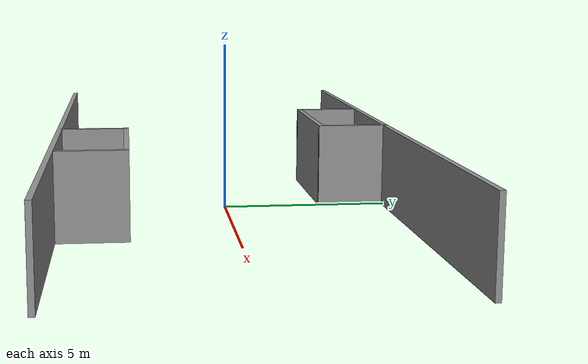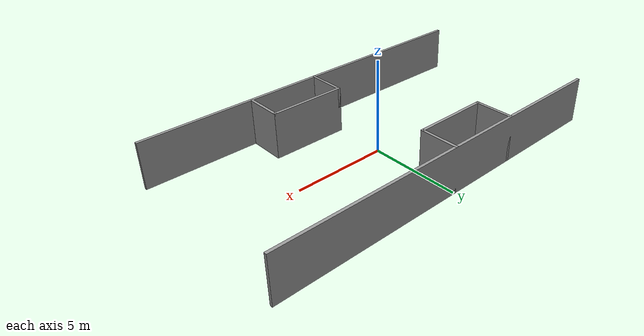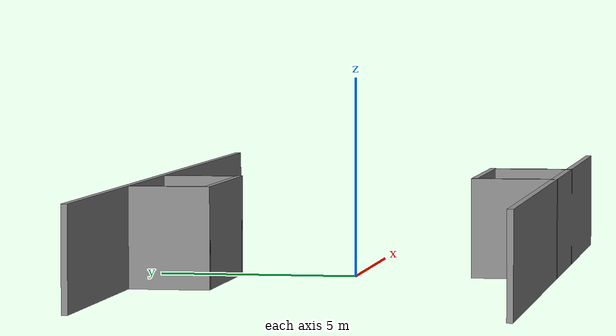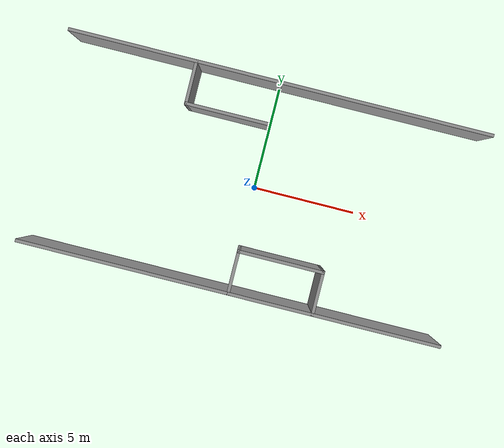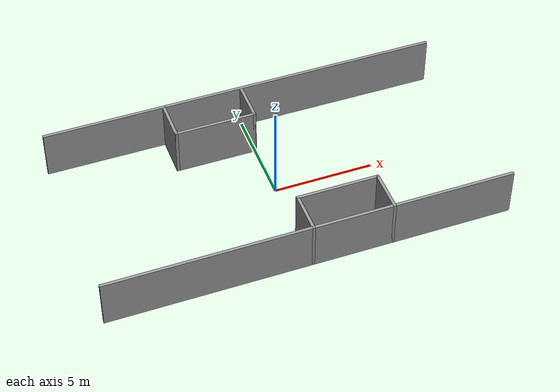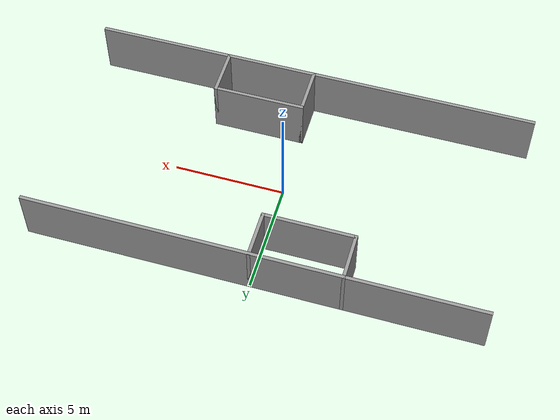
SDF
<?xml version='1.0'?>
<sdf version='1.6'>
  <model name='part_line'>
    <link name='Wall_15'>
      <pose frame=''>0 -5 0 0 -0 0</pose>
      <self_collide>0</self_collide>
      <kinematic>0</kinematic>
      <visual name='Wall_15_Visual'>
        <pose frame=''>0 0 1.25 0 -0 0</pose>
        <geometry>
          <box>
            <size>20.15 0.15 2.5</size>
          </box>
        </geometry>
        <material>
          <script>
            <uri>file://media/materials/scripts/gazebo.material</uri>
            <name>Gazebo/Grey</name>
          </script>
          <ambient>1 1 1 1</ambient>
          <diffuse>0.7 0.7 0.7 1</diffuse>
          <specular>0.01 0.01 0.01 1</specular>
          <emissive>0 0 0 1</emissive>
        </material>
        <cast_shadows>1</cast_shadows>
        <transparency>0</transparency>
      </visual>
      <collision name='Wall_15_Collision'>
        <laser_retro>0</laser_retro>
        <max_contacts>10</max_contacts>
        <pose frame=''>0 0 1.25 0 -0 0</pose>
        <geometry>
          <box>
            <size>20.15 0.15 2.5</size>
          </box>
        </geometry>
        <surface>
          <friction>
            <ode>
              <mu>1</mu>
              <mu2>1</mu2>
              <fdir1>0 0 0</fdir1>
              <slip1>0</slip1>
              <slip2>0</slip2>
            </ode>
            <torsional>
              <coefficient>1</coefficient>
              <patch_radius>0</patch_radius>
              <surface_radius>0</surface_radius>
              <use_patch_radius>1</use_patch_radius>
              <ode>
                <slip>0</slip>
              </ode>
            </torsional>
          </friction>
          <bounce>
            <restitution_coefficient>0</restitution_coefficient>
            <threshold>1e+06</threshold>
          </bounce>
          <contact>
            <collide_without_contact>0</collide_without_contact>
            <collide_without_contact_bitmask>1</collide_without_contact_bitmask>
            <collide_bitmask>1</collide_bitmask>
            <ode>
              <soft_cfm>0</soft_cfm>
              <soft_erp>0.2</soft_erp>
              <kp>1e+13</kp>
              <kd>1</kd>
              <max_vel>0.01</max_vel>
              <min_depth>0</min_depth>
            </ode>
            <bullet>
              <split_impulse>1</split_impulse>
              <split_impulse_penetration_threshold>-0.01</split_impulse_penetration_threshold>
              <soft_cfm>0</soft_cfm>
              <soft_erp>0.2</soft_erp>
              <kp>1e+13</kp>
              <kd>1</kd>
            </bullet>
          </contact>
        </surface>
      </collision>
    </link>
    <link name='Wall_17'>
      <pose frame=''>0 5 0 0 -0 0</pose>
      <self_collide>0</self_collide>
      <kinematic>0</kinematic>
      <visual name='Wall_17_Visual'>
        <pose frame=''>0 0 1.25 0 -0 0</pose>
        <geometry>
          <box>
            <size>20.15 0.15 2.5</size>
          </box>
        </geometry>
        <material>
          <script>
            <uri>file://media/materials/scripts/gazebo.material</uri>
            <name>Gazebo/Grey</name>
          </script>
          <ambient>1 1 1 1</ambient>
          <diffuse>0.7 0.7 0.7 1</diffuse>
          <specular>0.01 0.01 0.01 1</specular>
          <emissive>0 0 0 1</emissive>
        </material>
        <cast_shadows>1</cast_shadows>
        <transparency>0</transparency>
      </visual>
      <collision name='Wall_17_Collision'>
        <laser_retro>0</laser_retro>
        <max_contacts>10</max_contacts>
        <pose frame=''>0 0 1.25 0 -0 0</pose>
        <geometry>
          <box>
            <size>20.15 0.15 2.5</size>
          </box>
        </geometry>
        <surface>
          <friction>
            <ode>
              <mu>1</mu>
              <mu2>1</mu2>
              <fdir1>0 0 0</fdir1>
              <slip1>0</slip1>
              <slip2>0</slip2>
            </ode>
            <torsional>
              <coefficient>1</coefficient>
              <patch_radius>0</patch_radius>
              <surface_radius>0</surface_radius>
              <use_patch_radius>1</use_patch_radius>
              <ode>
                <slip>0</slip>
              </ode>
            </torsional>
          </friction>
          <bounce>
            <restitution_coefficient>0</restitution_coefficient>
            <threshold>1e+06</threshold>
          </bounce>
          <contact>
            <collide_without_contact>0</collide_without_contact>
            <collide_without_contact_bitmask>1</collide_without_contact_bitmask>
            <collide_bitmask>1</collide_bitmask>
            <ode>
              <soft_cfm>0</soft_cfm>
              <soft_erp>0.2</soft_erp>
              <kp>1e+13</kp>
              <kd>1</kd>
              <max_vel>0.01</max_vel>
              <min_depth>0</min_depth>
            </ode>
            <bullet>
              <split_impulse>1</split_impulse>
              <split_impulse_penetration_threshold>-0.01</split_impulse_penetration_threshold>
              <soft_cfm>0</soft_cfm>
              <soft_erp>0.2</soft_erp>
              <kp>1e+13</kp>
              <kd>1</kd>
            </bullet>
          </contact>
        </surface>
      </collision>
    </link>
    <link name='Wall_19'>
      <pose frame=''>-4 4 0 0 0 -1.5708</pose>
      <self_collide>0</self_collide>
      <kinematic>0</kinematic>
      <visual name='Wall_19_Visual'>
        <pose frame=''>0 0 1.25 0 -0 0</pose>
        <geometry>
          <box>
            <size>2.15 0.15 2.5</size>
          </box>
        </geometry>
        <material>
          <script>
            <uri>file://media/materials/scripts/gazebo.material</uri>
            <name>Gazebo/Grey</name>
          </script>
          <ambient>1 1 1 1</ambient>
          <diffuse>0.7 0.7 0.7 1</diffuse>
          <specular>0.01 0.01 0.01 1</specular>
          <emissive>0 0 0 1</emissive>
        </material>
        <cast_shadows>1</cast_shadows>
        <transparency>0</transparency>
      </visual>
      <collision name='Wall_19_Collision'>
        <laser_retro>0</laser_retro>
        <max_contacts>10</max_contacts>
        <pose frame=''>0 0 1.25 0 -0 0</pose>
        <geometry>
          <box>
            <size>2.15 0.15 2.5</size>
          </box>
        </geometry>
        <surface>
          <friction>
            <ode>
              <mu>1</mu>
              <mu2>1</mu2>
              <fdir1>0 0 0</fdir1>
              <slip1>0</slip1>
              <slip2>0</slip2>
            </ode>
            <torsional>
              <coefficient>1</coefficient>
              <patch_radius>0</patch_radius>
              <surface_radius>0</surface_radius>
              <use_patch_radius>1</use_patch_radius>
              <ode>
                <slip>0</slip>
              </ode>
            </torsional>
          </friction>
          <bounce>
            <restitution_coefficient>0</restitution_coefficient>
            <threshold>1e+06</threshold>
          </bounce>
          <contact>
            <collide_without_contact>0</collide_without_contact>
            <collide_without_contact_bitmask>1</collide_without_contact_bitmask>
            <collide_bitmask>1</collide_bitmask>
            <ode>
              <soft_cfm>0</soft_cfm>
              <soft_erp>0.2</soft_erp>
              <kp>1e+13</kp>
              <kd>1</kd>
              <max_vel>0.01</max_vel>
              <min_depth>0</min_depth>
            </ode>
            <bullet>
              <split_impulse>1</split_impulse>
              <split_impulse_penetration_threshold>-0.01</split_impulse_penetration_threshold>
              <soft_cfm>0</soft_cfm>
              <soft_erp>0.2</soft_erp>
              <kp>1e+13</kp>
              <kd>1</kd>
            </bullet>
          </contact>
        </surface>
      </collision>
    </link>
    <link name='Wall_20'>
      <pose frame=''>-2 3 0 0 -0 0</pose>
      <self_collide>0</self_collide>
      <kinematic>0</kinematic>
      <visual name='Wall_20_Visual'>
        <pose frame=''>0 0 1.25 0 -0 0</pose>
        <geometry>
          <box>
            <size>4.15 0.15 2.5</size>
          </box>
        </geometry>
        <material>
          <script>
            <uri>file://media/materials/scripts/gazebo.material</uri>
            <name>Gazebo/Grey</name>
          </script>
          <ambient>1 1 1 1</ambient>
          <diffuse>0.7 0.7 0.7 1</diffuse>
          <specular>0.01 0.01 0.01 1</specular>
          <emissive>0 0 0 1</emissive>
        </material>
        <cast_shadows>1</cast_shadows>
        <transparency>0</transparency>
      </visual>
      <collision name='Wall_20_Collision'>
        <laser_retro>0</laser_retro>
        <max_contacts>10</max_contacts>
        <pose frame=''>0 0 1.25 0 -0 0</pose>
        <geometry>
          <box>
            <size>4.15 0.15 2.5</size>
          </box>
        </geometry>
        <surface>
          <friction>
            <ode>
              <mu>1</mu>
              <mu2>1</mu2>
              <fdir1>0 0 0</fdir1>
              <slip1>0</slip1>
              <slip2>0</slip2>
            </ode>
            <torsional>
              <coefficient>1</coefficient>
              <patch_radius>0</patch_radius>
              <surface_radius>0</surface_radius>
              <use_patch_radius>1</use_patch_radius>
              <ode>
                <slip>0</slip>
              </ode>
            </torsional>
          </friction>
          <bounce>
            <restitution_coefficient>0</restitution_coefficient>
            <threshold>1e+06</threshold>
          </bounce>
          <contact>
            <collide_without_contact>0</collide_without_contact>
            <collide_without_contact_bitmask>1</collide_without_contact_bitmask>
            <collide_bitmask>1</collide_bitmask>
            <ode>
              <soft_cfm>0</soft_cfm>
              <soft_erp>0.2</soft_erp>
              <kp>1e+13</kp>
              <kd>1</kd>
              <max_vel>0.01</max_vel>
              <min_depth>0</min_depth>
            </ode>
            <bullet>
              <split_impulse>1</split_impulse>
              <split_impulse_penetration_threshold>-0.01</split_impulse_penetration_threshold>
              <soft_cfm>0</soft_cfm>
              <soft_erp>0.2</soft_erp>
              <kp>1e+13</kp>
              <kd>1</kd>
            </bullet>
          </contact>
        </surface>
      </collision>
    </link>
    <link name='Wall_21'>
      <pose frame=''>0 4 0 0 -0 1.5708</pose>
      <self_collide>0</self_collide>
      <kinematic>0</kinematic>
      <visual name='Wall_21_Visual'>
        <pose frame=''>0 0 1.25 0 -0 0</pose>
        <geometry>
          <box>
            <size>2.15 0.15 2.5</size>
          </box>
        </geometry>
        <material>
          <script>
            <uri>file://media/materials/scripts/gazebo.material</uri>
            <name>Gazebo/Grey</name>
          </script>
          <ambient>1 1 1 1</ambient>
          <diffuse>0.7 0.7 0.7 1</diffuse>
          <specular>0.01 0.01 0.01 1</specular>
          <emissive>0 0 0 1</emissive>
        </material>
        <cast_shadows>1</cast_shadows>
        <transparency>0</transparency>
      </visual>
      <collision name='Wall_21_Collision'>
        <laser_retro>0</laser_retro>
        <max_contacts>10</max_contacts>
        <pose frame=''>0 0 1.25 0 -0 0</pose>
        <geometry>
          <box>
            <size>2.15 0.15 2.5</size>
          </box>
        </geometry>
        <surface>
          <friction>
            <ode>
              <mu>1</mu>
              <mu2>1</mu2>
              <fdir1>0 0 0</fdir1>
              <slip1>0</slip1>
              <slip2>0</slip2>
            </ode>
            <torsional>
              <coefficient>1</coefficient>
              <patch_radius>0</patch_radius>
              <surface_radius>0</surface_radius>
              <use_patch_radius>1</use_patch_radius>
              <ode>
                <slip>0</slip>
              </ode>
            </torsional>
          </friction>
          <bounce>
            <restitution_coefficient>0</restitution_coefficient>
            <threshold>1e+06</threshold>
          </bounce>
          <contact>
            <collide_without_contact>0</collide_without_contact>
            <collide_without_contact_bitmask>1</collide_without_contact_bitmask>
            <collide_bitmask>1</collide_bitmask>
            <ode>
              <soft_cfm>0</soft_cfm>
              <soft_erp>0.2</soft_erp>
              <kp>1e+13</kp>
              <kd>1</kd>
              <max_vel>0.01</max_vel>
              <min_depth>0</min_depth>
            </ode>
            <bullet>
              <split_impulse>1</split_impulse>
              <split_impulse_penetration_threshold>-0.01</split_impulse_penetration_threshold>
              <soft_cfm>0</soft_cfm>
              <soft_erp>0.2</soft_erp>
              <kp>1e+13</kp>
              <kd>1</kd>
            </bullet>
          </contact>
        </surface>
      </collision>
    </link>
    <link name='Wall_23'>
      <pose frame=''>0 -4 0 0 -0 1.5708</pose>
      <self_collide>0</self_collide>
      <kinematic>0</kinematic>
      <visual name='Wall_23_Visual'>
        <pose frame=''>0 0 1.25 0 -0 0</pose>
        <geometry>
          <box>
            <size>2.15 0.15 2.5</size>
          </box>
        </geometry>
        <material>
          <script>
            <uri>file://media/materials/scripts/gazebo.material</uri>
            <name>Gazebo/Grey</name>
          </script>
          <ambient>1 1 1 1</ambient>
          <diffuse>0.7 0.7 0.7 1</diffuse>
          <specular>0.01 0.01 0.01 1</specular>
          <emissive>0 0 0 1</emissive>
        </material>
        <cast_shadows>1</cast_shadows>
        <transparency>0</transparency>
      </visual>
      <collision name='Wall_23_Collision'>
        <laser_retro>0</laser_retro>
        <max_contacts>10</max_contacts>
        <pose frame=''>0 0 1.25 0 -0 0</pose>
        <geometry>
          <box>
            <size>2.15 0.15 2.5</size>
          </box>
        </geometry>
        <surface>
          <friction>
            <ode>
              <mu>1</mu>
              <mu2>1</mu2>
              <fdir1>0 0 0</fdir1>
              <slip1>0</slip1>
              <slip2>0</slip2>
            </ode>
            <torsional>
              <coefficient>1</coefficient>
              <patch_radius>0</patch_radius>
              <surface_radius>0</surface_radius>
              <use_patch_radius>1</use_patch_radius>
              <ode>
                <slip>0</slip>
              </ode>
            </torsional>
          </friction>
          <bounce>
            <restitution_coefficient>0</restitution_coefficient>
            <threshold>1e+06</threshold>
          </bounce>
          <contact>
            <collide_without_contact>0</collide_without_contact>
            <collide_without_contact_bitmask>1</collide_without_contact_bitmask>
            <collide_bitmask>1</collide_bitmask>
            <ode>
              <soft_cfm>0</soft_cfm>
              <soft_erp>0.2</soft_erp>
              <kp>1e+13</kp>
              <kd>1</kd>
              <max_vel>0.01</max_vel>
              <min_depth>0</min_depth>
            </ode>
            <bullet>
              <split_impulse>1</split_impulse>
              <split_impulse_penetration_threshold>-0.01</split_impulse_penetration_threshold>
              <soft_cfm>0</soft_cfm>
              <soft_erp>0.2</soft_erp>
              <kp>1e+13</kp>
              <kd>1</kd>
            </bullet>
          </contact>
        </surface>
      </collision>
    </link>
    <link name='Wall_24'>
      <pose frame=''>2 -3 0 0 -0 0</pose>
      <self_collide>0</self_collide>
      <kinematic>0</kinematic>
      <visual name='Wall_24_Visual'>
        <pose frame=''>0 0 1.25 0 -0 0</pose>
        <geometry>
          <box>
            <size>4.15 0.15 2.5</size>
          </box>
        </geometry>
        <material>
          <script>
            <uri>file://media/materials/scripts/gazebo.material</uri>
            <name>Gazebo/Grey</name>
          </script>
          <ambient>1 1 1 1</ambient>
          <diffuse>0.7 0.7 0.7 1</diffuse>
          <specular>0.01 0.01 0.01 1</specular>
          <emissive>0 0 0 1</emissive>
        </material>
        <cast_shadows>1</cast_shadows>
        <transparency>0</transparency>
      </visual>
      <collision name='Wall_24_Collision'>
        <laser_retro>0</laser_retro>
        <max_contacts>10</max_contacts>
        <pose frame=''>0 0 1.25 0 -0 0</pose>
        <geometry>
          <box>
            <size>4.15 0.15 2.5</size>
          </box>
        </geometry>
        <surface>
          <friction>
            <ode>
              <mu>1</mu>
              <mu2>1</mu2>
              <fdir1>0 0 0</fdir1>
              <slip1>0</slip1>
              <slip2>0</slip2>
            </ode>
            <torsional>
              <coefficient>1</coefficient>
              <patch_radius>0</patch_radius>
              <surface_radius>0</surface_radius>
              <use_patch_radius>1</use_patch_radius>
              <ode>
                <slip>0</slip>
              </ode>
            </torsional>
          </friction>
          <bounce>
            <restitution_coefficient>0</restitution_coefficient>
            <threshold>1e+06</threshold>
          </bounce>
          <contact>
            <collide_without_contact>0</collide_without_contact>
            <collide_without_contact_bitmask>1</collide_without_contact_bitmask>
            <collide_bitmask>1</collide_bitmask>
            <ode>
              <soft_cfm>0</soft_cfm>
              <soft_erp>0.2</soft_erp>
              <kp>1e+13</kp>
              <kd>1</kd>
              <max_vel>0.01</max_vel>
              <min_depth>0</min_depth>
            </ode>
            <bullet>
              <split_impulse>1</split_impulse>
              <split_impulse_penetration_threshold>-0.01</split_impulse_penetration_threshold>
              <soft_cfm>0</soft_cfm>
              <soft_erp>0.2</soft_erp>
              <kp>1e+13</kp>
              <kd>1</kd>
            </bullet>
          </contact>
        </surface>
      </collision>
    </link>
    <link name='Wall_25'>
      <pose frame=''>4 -4 0 0 0 -1.5708</pose>
      <self_collide>0</self_collide>
      <kinematic>0</kinematic>
      <visual name='Wall_25_Visual'>
        <pose frame=''>0 0 1.25 0 -0 0</pose>
        <geometry>
          <box>
            <size>2.15 0.15 2.5</size>
          </box>
        </geometry>
        <material>
          <script>
            <uri>file://media/materials/scripts/gazebo.material</uri>
            <name>Gazebo/Grey</name>
          </script>
          <ambient>1 1 1 1</ambient>
          <diffuse>0.7 0.7 0.7 1</diffuse>
          <specular>0.01 0.01 0.01 1</specular>
          <emissive>0 0 0 1</emissive>
        </material>
        <cast_shadows>1</cast_shadows>
        <transparency>0</transparency>
      </visual>
      <collision name='Wall_25_Collision'>
        <laser_retro>0</laser_retro>
        <max_contacts>10</max_contacts>
        <pose frame=''>0 0 1.25 0 -0 0</pose>
        <geometry>
          <box>
            <size>2.15 0.15 2.5</size>
          </box>
        </geometry>
        <surface>
          <friction>
            <ode>
              <mu>1</mu>
              <mu2>1</mu2>
              <fdir1>0 0 0</fdir1>
              <slip1>0</slip1>
              <slip2>0</slip2>
            </ode>
            <torsional>
              <coefficient>1</coefficient>
              <patch_radius>0</patch_radius>
              <surface_radius>0</surface_radius>
              <use_patch_radius>1</use_patch_radius>
              <ode>
                <slip>0</slip>
              </ode>
            </torsional>
          </friction>
          <bounce>
            <restitution_coefficient>0</restitution_coefficient>
            <threshold>1e+06</threshold>
          </bounce>
          <contact>
            <collide_without_contact>0</collide_without_contact>
            <collide_without_contact_bitmask>1</collide_without_contact_bitmask>
            <collide_bitmask>1</collide_bitmask>
            <ode>
              <soft_cfm>0</soft_cfm>
              <soft_erp>0.2</soft_erp>
              <kp>1e+13</kp>
              <kd>1</kd>
              <max_vel>0.01</max_vel>
              <min_depth>0</min_depth>
            </ode>
            <bullet>
              <split_impulse>1</split_impulse>
              <split_impulse_penetration_threshold>-0.01</split_impulse_penetration_threshold>
              <soft_cfm>0</soft_cfm>
              <soft_erp>0.2</soft_erp>
              <kp>1e+13</kp>
              <kd>1</kd>
            </bullet>
          </contact>
        </surface>
      </collision>
    </link>
    <static>1</static>
    <allow_auto_disable>1</allow_auto_disable>
  </model>
</sdf>
